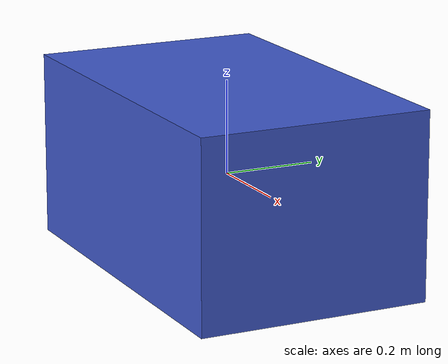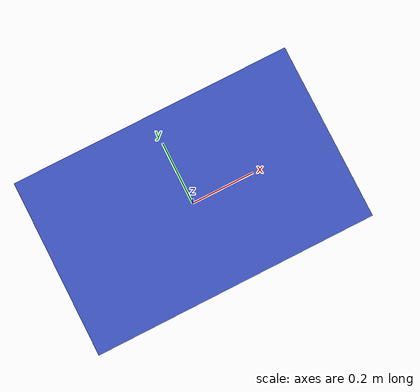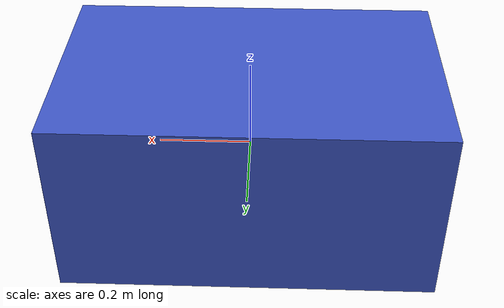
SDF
<?xml version='1.0'?><sdf version='1.9'><model name='vehicle_placeholder'><static>true</static><link name='body'><collision name='collision'><geometry><box><size>0.8 0.5 0.4</size></box></geometry></collision><visual name='visual'><geometry><box><size>0.8 0.5 0.4</size></box></geometry><material><diffuse>0.25 0.35 0.8 1</diffuse></material></visual></link></model></sdf>
